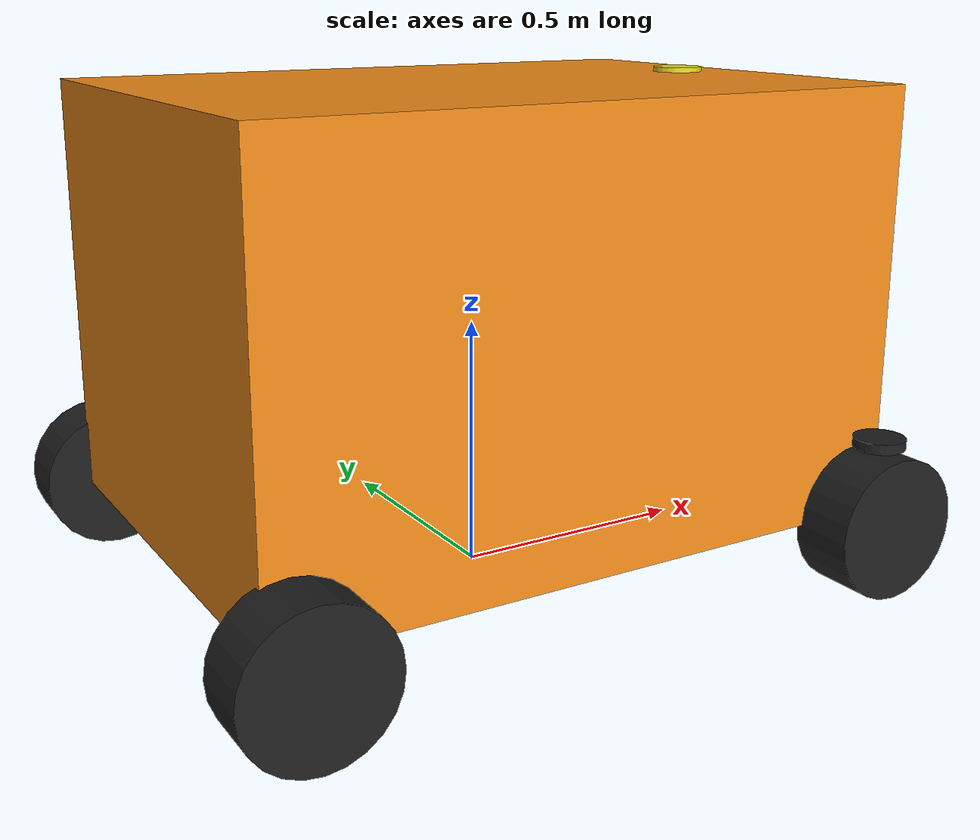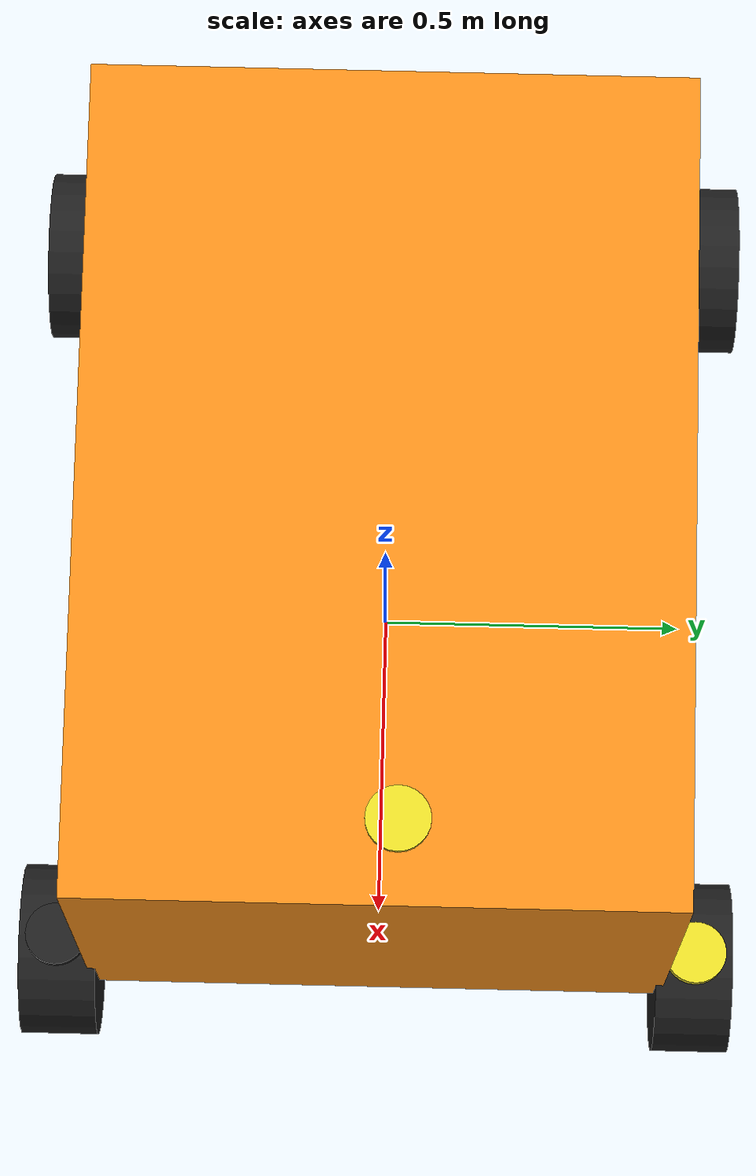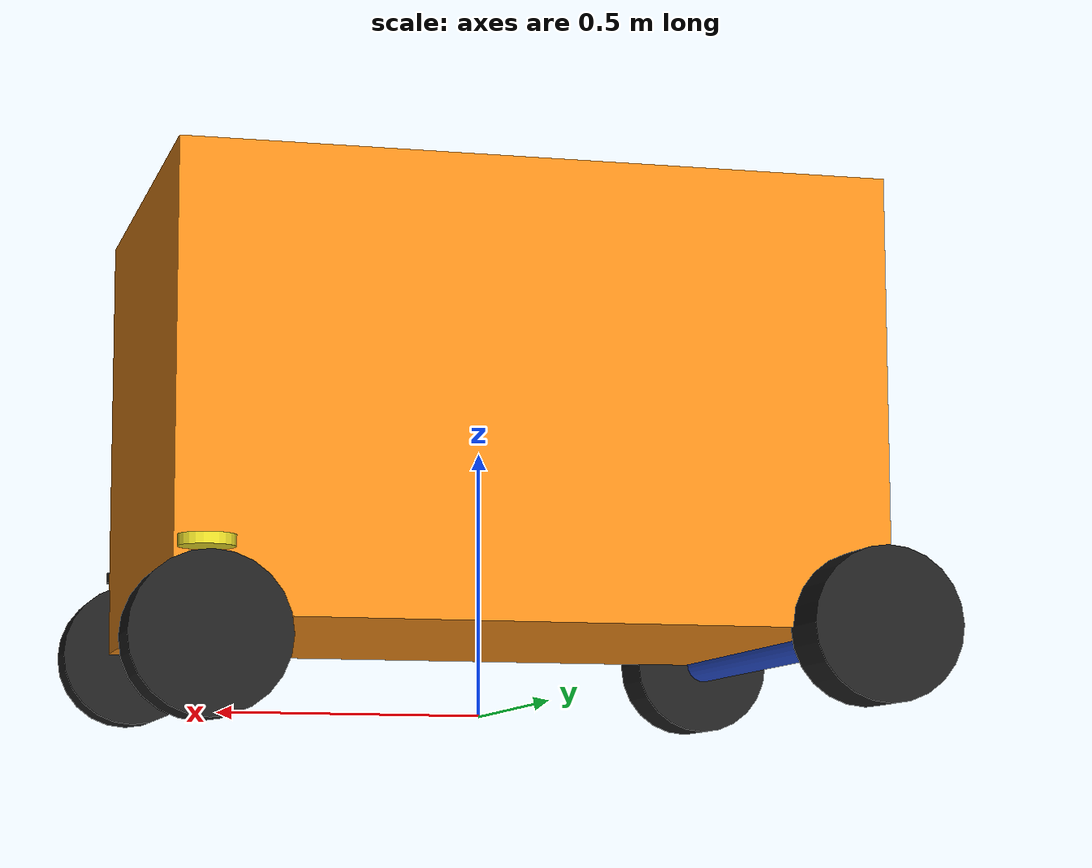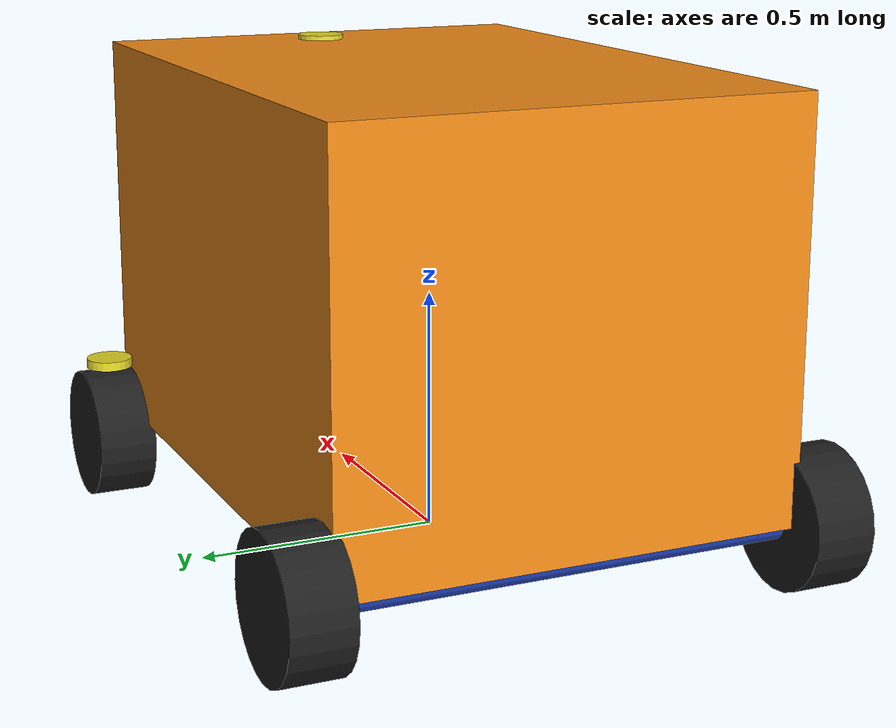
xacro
<?xml version="1.0"?>
<robot xmlns:xacro="http://www.ros.org/wiki/xacro" >
    <xacro:include filename="inertial_macros.xacro"/>
    <xacro:include filename="materials.xacro"/>

    <!-- Constants for robot dimensions -->
    <xacro:property name="PI" value="3.1415926535897931"/>
    <xacro:property name="base_mass" value="8.0" /> <!-- arbitrary value for base mass -->
    <xacro:property name="base_width" value="0.94" />
    <xacro:property name="base_length" value="1.3" />
    <xacro:property name="base_height" value="0.83" />
    <xacro:property name="wheelbase" value="0.8" />
    <xacro:property name="wheel_mass" value="0.34055" /> <!-- arbitrary value for wheel mass -->
    <xacro:property name="wheel_len" value="0.125" />
    <xacro:property name="wheel_radius" value="0.1397" />
    <xacro:property name="length" value="1.3" />
    <xacro:property name="width" value="0.94" />
    <xacro:property name="thickness" value="0.086" /> <!-- Link 2 -->
    <xacro:property name="axel_offset" value="0.05" /> <!-- Space btw top of beam and the each joint -->
    <xacro:property name="steer_offset" value="0.02" /> <!-- Link 1 -->
    <xacro:property name="steer_radius" value="0.05" /> <!-- Link 1 -->
    <xacro:property name="steer_thickness" value="0.02" /> <!-- Link 1 -->
    <xacro:property name="steer_effort"   value="10.0"/>
    <xacro:property name="steer_velocity" value="5.0"/>
    <xacro:property name="deg_to_rad" value="0.01745329251994329577"/>

    <!-- Base Link -->
    <link name="base_link" />

    <!-- Chassis -->

    <link name="chassis_link">
        <visual>
            <origin xyz="0 0 0" rpy="0 0 0"/>
            <geometry>
                <box size="${base_length} ${base_width} ${base_height}"/>
            </geometry>
            <material name="orange"/>
        </visual>
        <collision>
            <origin xyz="0 0 0" rpy="0 0 0"/>
            <geometry>
                <box size="${base_length} ${base_width} ${base_height}"/>
            </geometry>
        </collision>
        <inertial>
            <origin xyz="0 0 0" rpy="0 0 0"/>
            <mass value="${base_mass}"/>
            <inertia
                ixx="0.000270" ixy="0.0" ixz="0.0"
                iyy="0.000270" iyz="0.0"
                izz="0.000426"/>
        </inertial>
    </link>
    <gazebo reference="chassis_link">
        <material>Gazebo/Orange</material>
    </gazebo>

    <joint name="chassis_joint" type="fixed">
        <parent link="base_link"/>
        <child link="chassis_link"/>
        <origin xyz="0 0 ${base_height/2 + wheel_radius}" rpy="0 0 0"/>
        <axis xyz="0 0 1"/>
        <dynamics damping="0.2"/>
    </joint>

    <!-- Steer Front     -->

    <link name="front_steer_link">
        <visual>
            <origin xyz="0 0 0" rpy="0 0 0"/>
            <geometry>
                <cylinder length="${steer_thickness}" radius="${steer_radius}"/>
            </geometry>
            <material name="yellow"/>
        </visual>
        <collision>
            <origin xyz="0 0 0" rpy="0 0 0"/>
            <geometry>
                <cylinder length="${steer_thickness}" radius="${steer_radius}"/>
            </geometry>
        </collision>
        <inertial>
            <origin xyz="0 0 0" rpy="0 0 0"/>
            <mass value="${wheel_mass}"/>
            <inertia
                ixx="0.000270" ixy="0.0" ixz="0.0"
                iyy="0.000270" iyz="0.0"
                izz="0.000426"/>
        </inertial>

    </link>
    <gazebo reference="front_steer_link">
        <material>Gazebo/Yellow</material>
    </gazebo>

    <joint name="front_steer_joint" type="revolute">
        <parent link="chassis_link" />
        <child link="front_steer_link" />
        <origin xyz="${length/2.5} ${width/30} ${base_height/2}" rpy="0 0 0"/>
        <axis xyz="0 0 1"/>
        <limit effort="${steer_effort}" lower="${-45.0 * deg_to_rad}" upper="${45.0 * deg_to_rad}" velocity="${steer_velocity}"/>

    </joint>

    <!-- rear     -->
    <link name="rear_wheel_link">
        <visual>
            <origin xyz="0 0 0" rpy="0 0 0"/>
            <geometry>
                <cylinder length="${wheel_len*7.2}" radius="${wheel_radius/4}"/>
            </geometry>
            <material name="blue"/>
        </visual>
        <collision>
            <origin xyz="0 0 0" rpy="0 0 0"/>
            <geometry>
                <cylinder length="${wheel_len*7.2}" radius="${wheel_radius/4}"/>
            </geometry>
        </collision>
        <inertial>
            <origin xyz="0 0 0" rpy="0 0 0"/>
            <mass value="${wheel_mass}"/>
            <inertia
            ixx="0.000270" ixy="0.0" ixz="0.0"
            iyy="0.000270" iyz="0.0"
            izz="0.000426"/>
        </inertial>
    </link>
    <gazebo reference="rear_wheel_link">
        <material>Gazebo/Blue</material>
    </gazebo>

    <joint name="rear_wheel_joint" type="continuous">
        <parent link="chassis_link" />
        <child link="rear_wheel_link"/>
        <origin xyz="${-length/2+axel_offset} 0 ${-base_height/2}" rpy="${-90 * deg_to_rad} 0 0"/>
        <axis xyz="0 0 1"/>

    </joint>

    <!-- Wheels     -->

    <link name="front_right_steer_link">
        <visual>
            <origin xyz="0 0 0" rpy="0 0 0"/>
            <geometry>
                <cylinder radius="${steer_radius}" length="${steer_thickness}"/>
            </geometry>
            <material name="yellow"/>
        </visual>
        <collision>
            <origin xyz="0 0 0" rpy="0 0 0"/>
            <geometry>
                <cylinder radius="${steer_radius}" length="${steer_thickness}"/>
            </geometry>
        </collision>
        <inertial>
            <origin xyz="0 0 0" rpy="0 0 0"/>
            <mass value="${wheel_mass}"/>
            <inertia
                ixx="0.000270" ixy="0.0" ixz="0.0"
                iyy="0.000270" iyz="0.0"
                izz="0.000426"/>
        </inertial>

    </link>
    <gazebo reference="front_right_steer_link">
        <material>Gazebo/Yellow</material>
    </gazebo>

    <joint name="front_right_steer_joint" type="revolute">
        <parent link="chassis_link" />
        <child link="front_right_steer_link" />
        <origin xyz="${length/2-axel_offset} ${width/2+axel_offset} ${-(base_height/2-wheel_radius+steer_offset)}" rpy="0 0 0"/>
        <axis xyz="0 0 1"/>
        <limit effort="${steer_effort}" lower="${-45.0* deg_to_rad}" upper="${45.0 * deg_to_rad}" velocity="${steer_velocity}"/>
    </joint>

    <link name="front_left_steer_link">
        <visual>
            <origin xyz="0 0 0" rpy="0 0 0"/>
            <geometry>
                <cylinder radius="${steer_radius}" length="${steer_thickness}"/>
            </geometry>
            <material name="black"/>
        </visual>
        <collision>
            <origin xyz="0 0 0" rpy="0 0 0"/>
            <geometry>
                <cylinder radius="${steer_radius}" length="${steer_thickness}"/>
            </geometry>
        </collision>
        <inertial>
            <origin xyz="0 0 0" rpy="0 0 0"/>
            <mass value="${wheel_mass}"/>
            <inertia
                ixx="0.000270" ixy="0.0" ixz="0.0"
                iyy="0.000270" iyz="0.0"
                izz="0.000426"/>
        </inertial>

    </link>
    <gazebo reference="front_left_steer_link">
        <material>Gazebo/Yellow</material>
    </gazebo>

    <joint name="front_left_steer_joint" type="revolute">
        <parent link="chassis_link" />
        <child link="front_left_steer_link" />
        <origin xyz="${length/2-axel_offset} ${-width/2-axel_offset} ${-(base_height/2-wheel_radius-steer_offset)}" rpy="0 0 0"/>
        <axis xyz="0 0 1"/>
        <limit effort="${steer_effort}" lower="${-45.0 * deg_to_rad}" upper="${45.0 * deg_to_rad}" velocity="${steer_velocity}"/>

    </joint>

    <link name="front_right_wheel_link">
        <visual>
            <origin xyz="0 0 0" rpy="0 0 0"/>
            <geometry>
                <cylinder radius="${wheel_radius}" length="${wheel_len}"/>
            </geometry>
            <material name="black"/>
        </visual>
        <collision>
            <origin xyz="0 0 0" rpy="0 0 0"/>
            <geometry>
                <cylinder radius="${wheel_radius}" length="${wheel_len}"/>
            </geometry>
        </collision>
        <inertial>
            <origin xyz="0 0 0" rpy="0 0 0"/>
            <mass value="${wheel_mass}"/>
            <inertia
                ixx="0.000270" ixy="0.0" ixz="0.0"
                iyy="0.000270" iyz="0.0"
                izz="0.000426"/>
        </inertial>

    </link>
    <gazebo reference="front_right_wheel_link">
        <material>Gazebo/Blue</material>
    </gazebo>
    <joint name="front_right_wheel_joint" type="continuous">
        <parent link="front_right_steer_link"/>
        <child link="front_right_wheel_link"/>
        <origin xyz="0 0 ${-(wheel_radius+steer_offset)}" rpy="${-90 * deg_to_rad} 0 0"/>
        <axis xyz="0 0 1"/>
    </joint>

    <link name="front_left_wheel_link">
        <visual>
            <origin xyz="0 0 0" rpy="0 0 0"/>
            <geometry>
                <cylinder radius="${wheel_radius}" length="${wheel_len}"/>
            </geometry>
            <material name="black"/>
        </visual>
        <collision>
            <origin xyz="0 0 0" rpy="0 0 0"/>
            <geometry>
                <cylinder radius="${wheel_radius}" length="${wheel_len}"/>
            </geometry>
        </collision>
        <inertial>
            <origin xyz="0 0 0" rpy="0 0 0"/>
            <mass value="${wheel_mass}"/>
            <inertia
                ixx="0.000270" ixy="0.0" ixz="0.0"
                iyy="0.000270" iyz="0.0"
                izz="0.000426"/>
        </inertial>

    </link>
    <gazebo reference="front_left_wheel_link">
        <material>Gazebo/Blue</material>
    </gazebo>
    <joint name="front_left_wheel_joint" type="continuous">
        <parent link="front_left_steer_link"/>
        <child link="front_left_wheel_link"/>
        <origin xyz="0 0 ${-(wheel_radius+steer_offset)}" rpy="${-90 * deg_to_rad} 0 0"/>
        <axis xyz="0 0 1"/>
    </joint>

    <link name="rear_right_wheel_link">
        <visual>
            <origin xyz="0 0 0" rpy="0 0 0"/>
            <geometry>
                <cylinder length="${wheel_len}" radius="${wheel_radius}"/>
            </geometry>
            <material name="black"/>
        </visual>
        <collision>
            <origin xyz="0 0 0" rpy="0 0 0"/>
            <geometry>
                <cylinder length="${wheel_len}" radius="${wheel_radius}"/>
            </geometry>
        </collision>
        <inertial>
            <origin xyz="0 0 0" rpy="0 0 0"/>
            <mass value="${wheel_mass}"/>
            <inertia
            ixx="0.000270" ixy="0.0" ixz="0.0"
            iyy="0.000270" iyz="0.0"
            izz="0.000426"/>
        </inertial>
    </link>
    <gazebo reference="rear_right_wheel_link">
        <material>Gazebo/Blue</material>
    </gazebo>

    <joint name="rear_right_wheel_joint" type="continuous">
        <parent link="chassis_link" />
        <child link="rear_right_wheel_link" />
        <origin xyz="${-length/2+axel_offset} ${width/2+axel_offset} ${-base_height/2}" rpy="${-90 * deg_to_rad} 0 0"/>
        <axis xyz="0 0 1"/>

    </joint>

    <link name="rear_left_wheel_link">
        <visual>
            <origin xyz="0 0 0" rpy="0 0 0"/>
            <geometry>
                <cylinder length="${wheel_len}" radius="${wheel_radius}"/>
            </geometry>
            <material name="black"/>
        </visual>
        <collision>
            <origin xyz="0 0 0" rpy="0 0 0"/>
            <geometry>
                <cylinder length="${wheel_len}" radius="${wheel_radius}"/>
            </geometry>
        </collision>
        <inertial>
            <origin xyz="0 0 0" rpy="0 0 0"/>
            <mass value="${wheel_mass}"/>
            <inertia
            ixx="0.000270" ixy="0.0" ixz="0.0"
            iyy="0.000270" iyz="0.0"
            izz="0.000426"/>
        </inertial>
    </link>
    <gazebo reference="rear_left_wheel_link">
        <material>Gazebo/Blue</material>
    </gazebo>

    <joint name="rear_left_wheel_joint" type="continuous">
        <parent link="chassis_link" />
        <child link="rear_left_wheel_link" />
        <origin xyz="${-length/2+axel_offset} ${-width/2-axel_offset} ${-base_height/2}" rpy="${-90 * deg_to_rad} 0 0"/>
        <axis xyz="0 0 1"/>

    </joint>

</robot>
